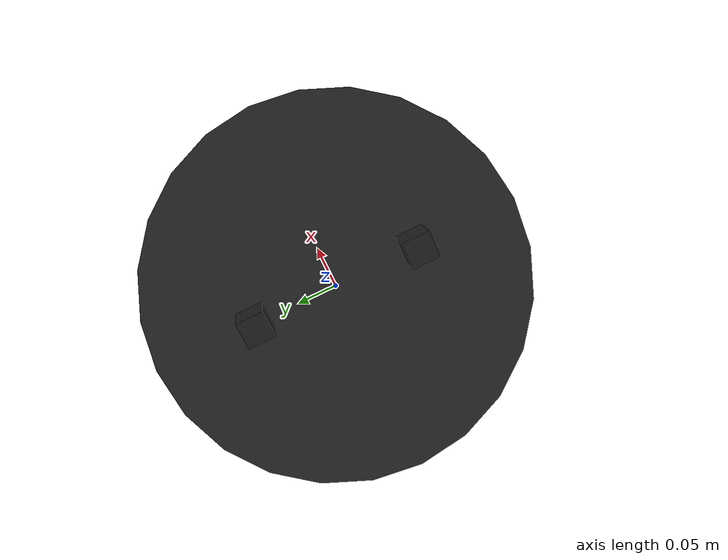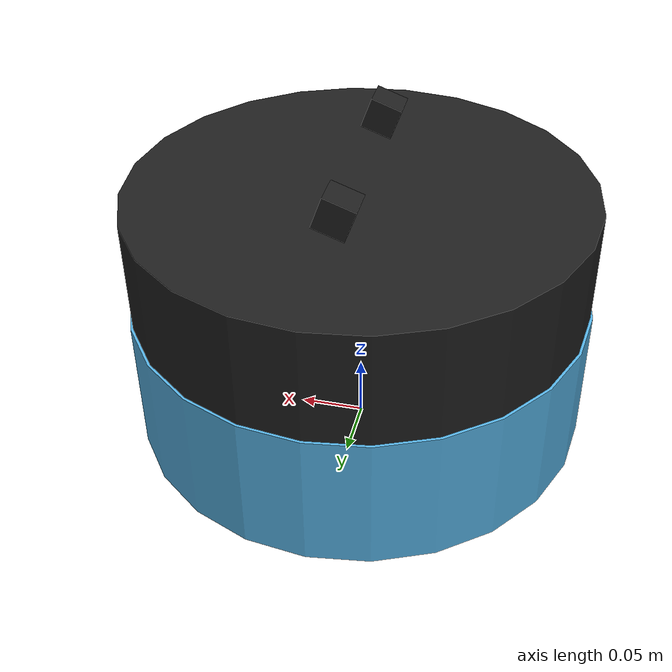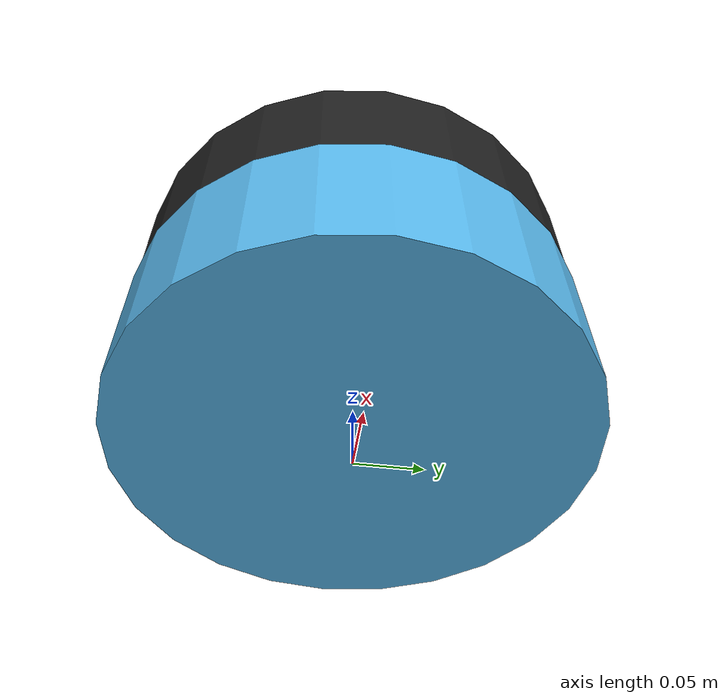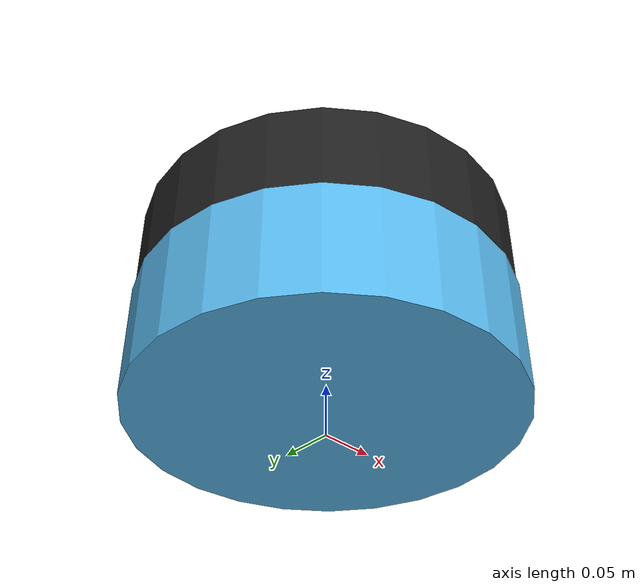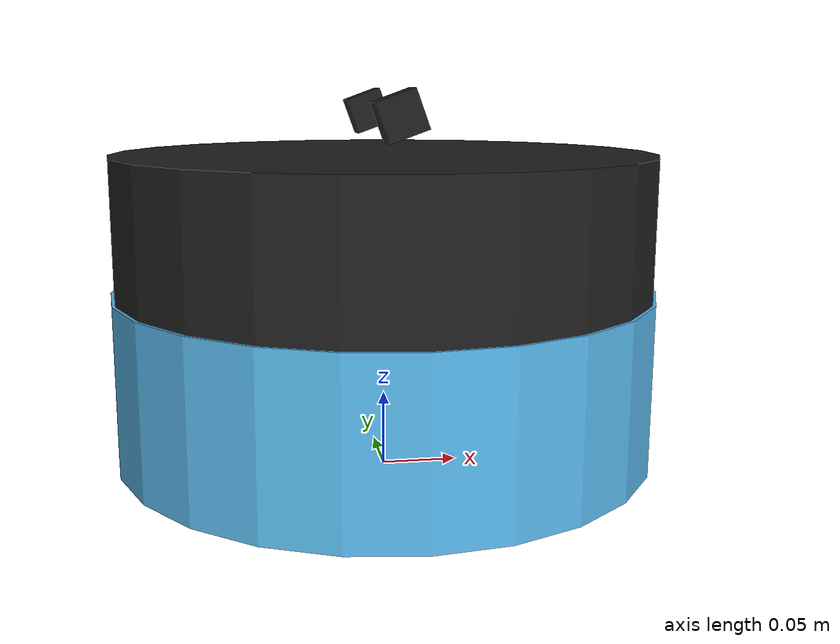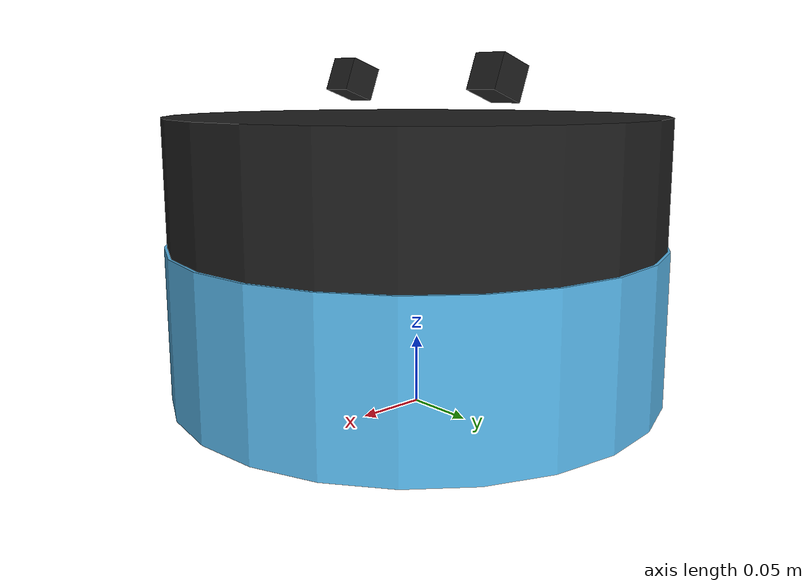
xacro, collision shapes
<robot name="kobuki"  xmlns:xacro="http://ros.org/wiki/xacro">
	<!-- Defines the kobuki component tag. -->
  	<xacro:include filename="$(find robot_descriptions)/vicon/kobuki_base.urdf.xacro" />

	<!--  load ugv using namespace by argument-->
  	<xacro:arg name="ns_arg" default="ugv_n" />
  	<xacro:kobuki_base_macro  X_ROBOT_NAMESPACE="$(arg ns_arg)"/>

</robot>

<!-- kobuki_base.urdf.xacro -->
<robot name="kobuki" xmlns:xacro="http://ros.org/wiki/xacro">
   <!-- Included Files -->
	  <xacro:include filename="$(find robot_descriptions)/UGV_n/urdf/common_properties.urdf.xacro"/>

		<xacro:macro name="kobuki_base_macro" params="X_ROBOT_NAMESPACE">
			<!-- properties -->
			<xacro:property name="X_PI" value="3.1415926535897931" />
			<xacro:property name="X_RADIUS" value="0.02" />
			<xacro:property name="X_LENGTH" value="0.1" />
			<xacro:property name="camera_box" value="0.025" /> <!-- Size of square 'camera' box -->
			<xacro:property name="X_BASELINE" value="0.1524" /> <!-- Size of square 'camera' box -->
 	  <!-- Kobuki Hardware -->
 		 <link name="${X_ROBOT_NAMESPACE}/base_footprint"/>

 		 <joint name="${X_ROBOT_NAMESPACE}/base_joint" type="fixed">
 			<origin xyz="0 0 0.0102" rpy="0 0 0" />
 			<parent link="${X_ROBOT_NAMESPACE}/base_footprint"/>
 			<child  link="${X_ROBOT_NAMESPACE}/base_link" />
 		 </joint>
 		 <link name="${X_ROBOT_NAMESPACE}/base_link">
 			<visual>
 			 <geometry>
 			   <!-- new mesh -->
 			   <mesh filename="package://robot_descriptions/UGV_n/meshes/main_body.dae" />
 			 </geometry>
 			 <origin xyz="0.001 0 0.05199" rpy="0 0 0"/>
 			</visual>
 			<collision name="base">
 			 <geometry>
 			   <cylinder length="0.10938" radius="0.178"/>
 			 </geometry>
 			 <origin xyz="0.0 0 0.05949" rpy="0 0 0"/>
 			</collision>
 			<inertial>
 			 <mass value="2.4"/> <!-- 2.4/2.6 kg for small/big battery pack -->
 			 <origin xyz="0.01 0 0"/>
 			 <inertia ixx="0.019995" ixy="0.0" ixz="0.0" iyy="0.019995" iyz="0.0" izz="0.03675" />
 			</inertial>
 		 </link>

  	  <!-- PC and Camera support -->
 		 <joint name="${X_ROBOT_NAMESPACE}/frame_joint" type="fixed">
 			<origin xyz="0 0 0.148" rpy="0 0 0" />
 			<parent link="${X_ROBOT_NAMESPACE}/base_link"/>
 			<child link="${X_ROBOT_NAMESPACE}/frame_link" />
 		 </joint>
 		 <link name="${X_ROBOT_NAMESPACE}/frame_link">
 			<visual>
 			<geometry>
 			<mesh filename="package://robot_descriptions/UGV_n/meshes/hast_kobuki_frame_grey.dae" />
 			</geometry>
 			<origin xyz="0 0 0" rpy="0 0 0"/>
 			<material name="black"/>
 			</visual>
 			<collision>
 			<geometry>
 			<cylinder length="0.10938" radius="0.176"/>
 			</geometry>
 			<origin xyz="0 0 0" rpy="0 0 0"/>
 			</collision>
 			<inertial>
 			<mass value="0.1"/> <!-- 2.4/2.6 kg for small/big battery pack -->
 			<origin xyz="0 0 0"/>
 			<inertia ixx="0.0001" ixy="0.0" ixz="0.0" iyy="0.0001" iyz="0.0" izz="0.0001" />
 			</inertial>
 		 </link>

 	  <!-- Camera Definitions -->
 		 <!-- camera center -->
 		 <joint name="${X_ROBOT_NAMESPACE}/stereo_center_joint" type="fixed">
 			<origin xyz="-0.0014 0 0.0804" rpy="0 -${20*X_PI/180} 0" />
 			<parent link="${X_ROBOT_NAMESPACE}/frame_link"/>
 			<child link="${X_ROBOT_NAMESPACE}/stereo_center"/>
 		 </joint>
 		 <link name="${X_ROBOT_NAMESPACE}/stereo_center"/>

 		 <!-- left camera -->
 		 <joint name="${X_ROBOT_NAMESPACE}/left_camera_joint" type="fixed">
 			<origin xyz="0 ${X_BASELINE/2} 0" rpy="0 0 0" />
 			<parent link="${X_ROBOT_NAMESPACE}/stereo_center"/>
 			<child link="${X_ROBOT_NAMESPACE}/stereo_left"/>
 		 </joint>
 		 <link name="${X_ROBOT_NAMESPACE}/stereo_left">
 			<collision>
 			<origin xyz="0 0 0" rpy="0 0 0"/>
 			<geometry>
 			<box size="${camera_box} ${camera_box} ${camera_box}"/>
 			</geometry>
 			</collision>
 			<visual>
 			<origin xyz="0 0 0" rpy="0 0 0"/>
 			<geometry>
 			<box size="${camera_box} ${camera_box} ${camera_box}"/>
 			</geometry>
 			<material name="black"/>
 			</visual>
 			<inertial>
 			<mass value="1e-5" />
 			<origin xyz="0 0 0" rpy="0 0 0"/>
 			<inertia ixx="1e-6" ixy="0" ixz="0" iyy="1e-6" iyz="0" izz="1e-6" />
 			</inertial>
 		 </link>

 		 <!-- right camera -->
 		 <joint name="${X_ROBOT_NAMESPACE}/right_camera_joint" type="fixed">
 			<origin xyz="0 ${-X_BASELINE/2} 0" rpy="0 0 0" />
 			<parent link="${X_ROBOT_NAMESPACE}/stereo_center"/>
 			<child link="${X_ROBOT_NAMESPACE}/stereo_right"/>
 		 </joint>
 		 <link name="${X_ROBOT_NAMESPACE}/stereo_right">
 			<collision>
 			<origin xyz="0 0 0" rpy="0 0 0"/>
 			<geometry>
 			<box size="${camera_box} ${camera_box} ${camera_box}"/>
 			</geometry>
 			</collision>
 			<visual>
 			<origin xyz="0 0 0" rpy="0 0 0"/>
 			<geometry>
 			<box size="${camera_box} ${camera_box} ${camera_box}"/>
 			</geometry>
 			<material name="black"/>
 			</visual>
 			<inertial>
 			<mass value="1e-5" />
 			<origin xyz="0 0 0" rpy="0 0 0"/>
 			<inertia ixx="1e-6" ixy="0" ixz="0" iyy="1e-6" iyz="0" izz="1e-6" />
 			</inertial>
 		 </link>

   </xacro:macro>
</robot>
